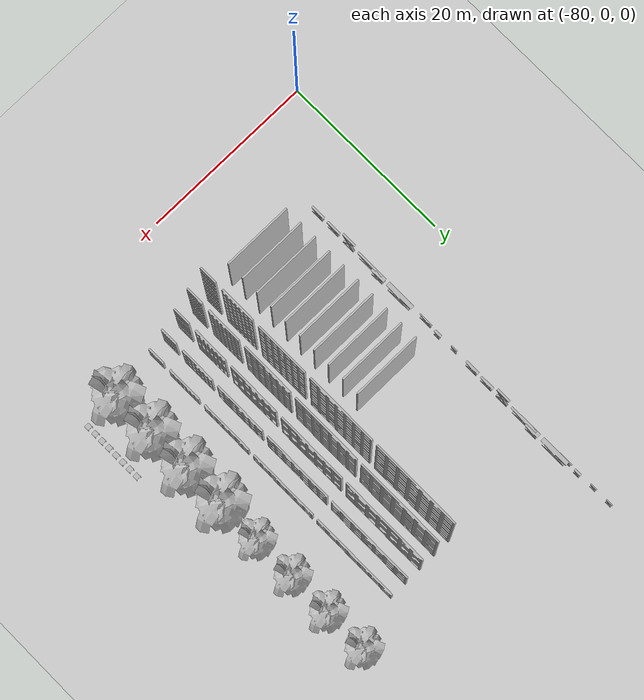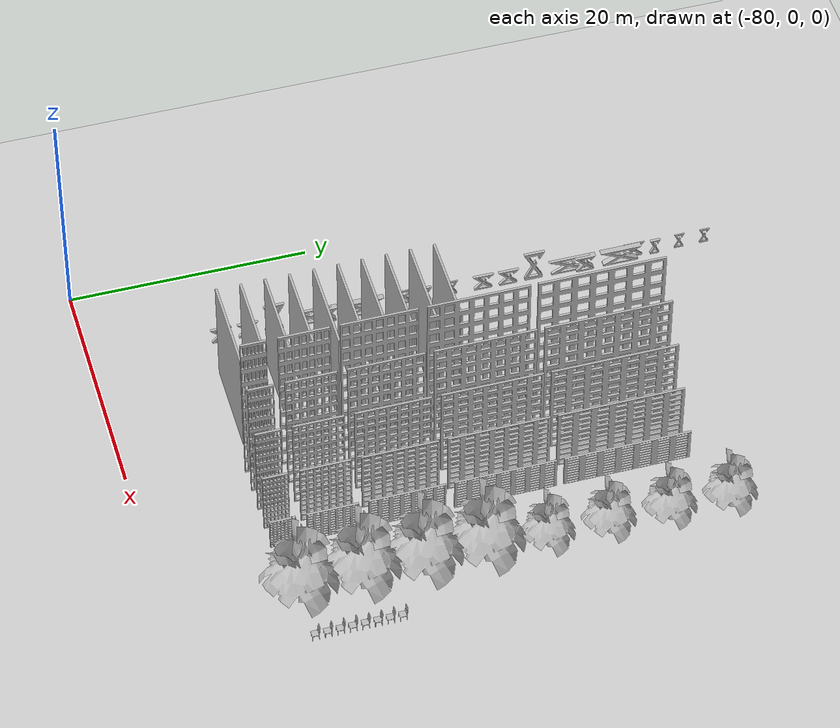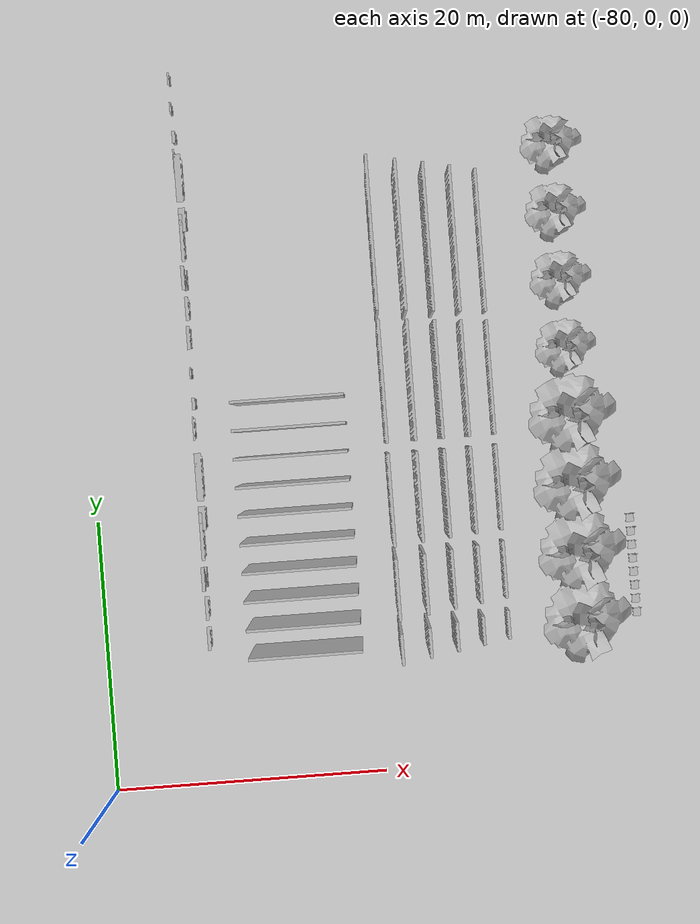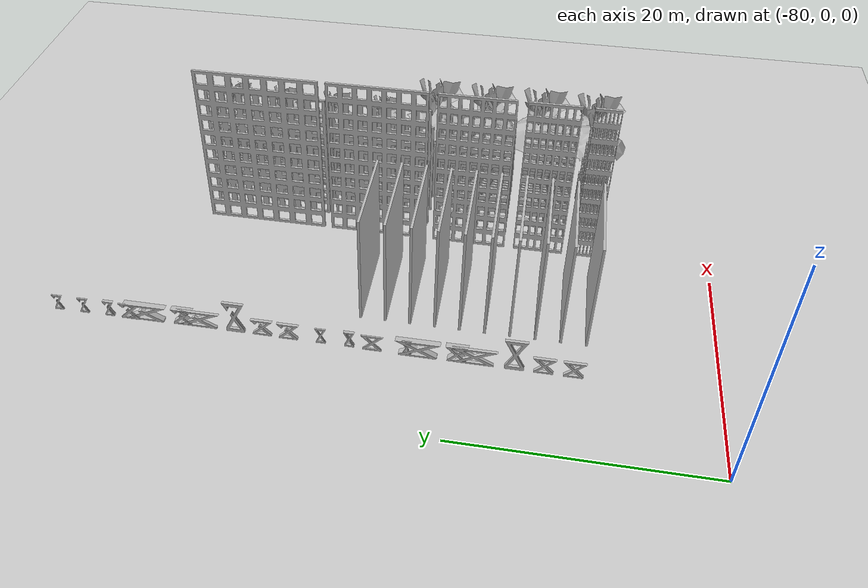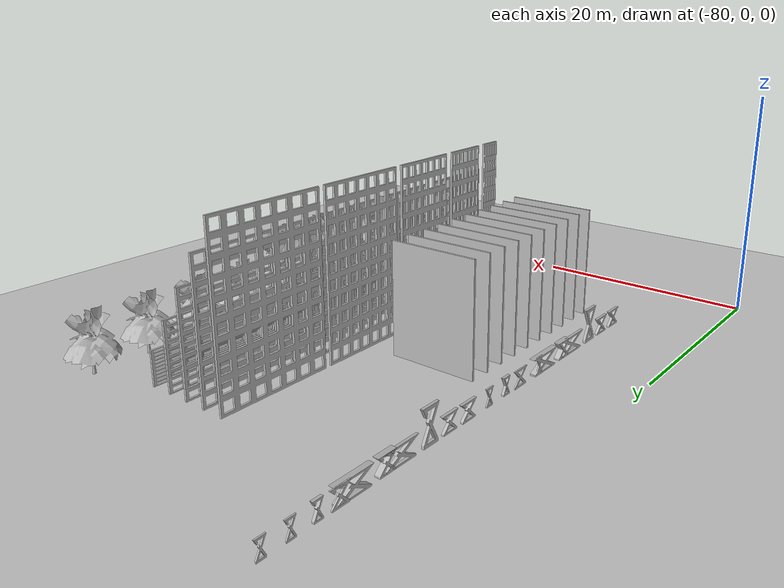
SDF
<sdf version="1.6">
 <world name="default">
  <model name="ground_plane">
   <static>1</static>
   <link name="link">
    <collision name="collision">
     <geometry><plane><normal>0 0 1</normal><size>1000 1000</size></plane></geometry>
     <surface>
      <contact><collide_bitmask>65535</collide_bitmask></contact>
      <friction><ode><mu>100</mu><mu2>50</mu2></ode></friction>
     </surface>
    </collision>
    <visual name="visual">
     <cast_shadows>0</cast_shadows>
     <geometry><plane><normal>0 0 1</normal><size>1000 1000</size></plane></geometry>
     <material>
      <script><uri>file://media/materials/scripts/gazebo.material</uri><name>Gazebo/Grey</name></script>
     </material>
    </visual>
   </link>
  </model>
  <model name="tree_0">
   <static>1</static>
   <link name="link">
    <inertial>
     <mass>100</mass>
     <inertia><ixx>100</ixx><ixy>0</ixy><ixz>0</ixz><iyy>100</iyy><iyz>0</iyz><izz>100</izz></inertia>
    </inertial>
    <collision name="collision">
     <geometry><mesh><uri>model://tree/meshes/tree.dae</uri></mesh></geometry>
    </collision>
    <visual name="visual"><geometry><mesh><uri>model://tree/meshes/tree.dae</uri></mesh></geometry></visual>
   </link>
   <pose>-44.6003 10.3851 0 0 -0 0</pose>
  </model>
  <model name="tree_1">
   <static>1</static>
   <link name="link">
    <inertial>
     <mass>100</mass>
     <inertia><ixx>100</ixx><ixy>0</ixy><ixz>0</ixz><iyy>100</iyy><iyz>0</iyz><izz>100</izz></inertia>
    </inertial>
    <collision name="collision">
     <geometry><mesh><uri>model://tree/meshes/tree.dae</uri></mesh></geometry>
    </collision>
    <visual name="visual"><geometry><mesh><uri>model://tree/meshes/tree.dae</uri></mesh></geometry></visual>
   </link>
   <pose>-44.6003 15.3851 0 0 -0 0</pose>
  </model>
  <model name="tree_2">
   <static>1</static>
   <link name="link">
    <inertial>
     <mass>100</mass>
     <inertia><ixx>100</ixx><ixy>0</ixy><ixz>0</ixz><iyy>100</iyy><iyz>0</iyz><izz>100</izz></inertia>
    </inertial>
    <collision name="collision">
     <geometry><mesh><uri>model://tree/meshes/tree.dae</uri></mesh></geometry>
    </collision>
    <visual name="visual"><geometry><mesh><uri>model://tree/meshes/tree.dae</uri></mesh></geometry></visual>
   </link>
   <pose>-44.6003 20.3851 0 0 -0 0</pose>
  </model>
  <model name="tree_3">
   <static>1</static>
   <link name="link">
    <inertial>
     <mass>100</mass>
     <inertia><ixx>100</ixx><ixy>0</ixy><ixz>0</ixz><iyy>100</iyy><iyz>0</iyz><izz>100</izz></inertia>
    </inertial>
    <collision name="collision">
     <geometry><mesh><uri>model://tree/meshes/tree.dae</uri></mesh></geometry>
    </collision>
    <visual name="visual"><geometry><mesh><uri>model://tree/meshes/tree.dae</uri></mesh></geometry></visual>
   </link>
   <pose>-44.6003 25.3851 0 0 -0 0</pose>
  </model>
  <model name="tree_4">
   <static>1</static>
   <link name="link">
    <inertial>
     <mass>100</mass>
     <inertia><ixx>100</ixx><ixy>0</ixy><ixz>0</ixz><iyy>100</iyy><iyz>0</iyz><izz>100</izz></inertia>
    </inertial>
    <collision name="collision">
     <geometry><mesh><uri>model://tree/meshes/tree.dae</uri><scale>0.7 0.7 0.7</scale></mesh></geometry>
    </collision>
    <visual name="visual">
     <geometry><mesh><uri>model://tree/meshes/tree.dae</uri><scale>0.7 0.7 0.7</scale></mesh></geometry>
    </visual>
   </link>
   <pose>-44.6003 30.3851 0 0 -0 0</pose>
  </model>
  <model name="tree_5">
   <static>1</static>
   <link name="link">
    <inertial>
     <mass>100</mass>
     <inertia><ixx>100</ixx><ixy>0</ixy><ixz>0</ixz><iyy>100</iyy><iyz>0</iyz><izz>100</izz></inertia>
    </inertial>
    <collision name="collision">
     <geometry><mesh><uri>model://tree/meshes/tree.dae</uri><scale>0.7 0.7 0.7</scale></mesh></geometry>
    </collision>
    <visual name="visual">
     <geometry><mesh><uri>model://tree/meshes/tree.dae</uri><scale>0.7 0.7 0.7</scale></mesh></geometry>
    </visual>
   </link>
   <pose>-44.6003 35.3851 0 0 -0 0</pose>
  </model>
  <model name="tree_6">
   <static>1</static>
   <link name="link">
    <inertial>
     <mass>100</mass>
     <inertia><ixx>100</ixx><ixy>0</ixy><ixz>0</ixz><iyy>100</iyy><iyz>0</iyz><izz>100</izz></inertia>
    </inertial>
    <collision name="collision">
     <geometry><mesh><uri>model://tree/meshes/tree.dae</uri><scale>0.7 0.7 0.7</scale></mesh></geometry>
    </collision>
    <visual name="visual">
     <geometry><mesh><uri>model://tree/meshes/tree.dae</uri><scale>0.7 0.7 0.7</scale></mesh></geometry>
    </visual>
   </link>
   <pose>-44.6003 40.3851 0 0 -0 0</pose>
  </model>
  <model name="tree_7">
   <static>1</static>
   <link name="link">
    <inertial>
     <mass>100</mass>
     <inertia><ixx>100</ixx><ixy>0</ixy><ixz>0</ixz><iyy>100</iyy><iyz>0</iyz><izz>100</izz></inertia>
    </inertial>
    <collision name="collision">
     <geometry><mesh><uri>model://tree/meshes/tree.dae</uri><scale>0.7 0.7 0.7</scale></mesh></geometry>
    </collision>
    <visual name="visual">
     <geometry><mesh><uri>model://tree/meshes/tree.dae</uri><scale>0.7 0.7 0.7</scale></mesh></geometry>
    </visual>
   </link>
   <pose>-44.6003 45.3851 0 0 -0 0</pose>
  </model>
  <model name="chair_0">
   <static>1</static>
   <link name="link">
    <inertial>
     <mass>100</mass>
     <inertia><ixx>100</ixx><ixy>0</ixy><ixz>0</ixz><iyy>100</iyy><iyz>0</iyz><izz>100</izz></inertia>
    </inertial>
    <collision name="collision">
     <geometry><mesh><uri>model://chair/meshes/chair.dae</uri><scale>1.5 1.5 1.5</scale></mesh></geometry>
    </collision>
    <visual name="visual">
     <geometry><mesh><uri>model://chair/meshes/chair.dae</uri><scale>1.5 1.5 1.5</scale></mesh></geometry>
    </visual>
   </link>
   <pose>-40.6067 10.4313 0 0 -0 0</pose>
  </model>
  <model name="chair_1">
   <static>1</static>
   <link name="link">
    <inertial>
     <mass>100</mass>
     <inertia><ixx>100</ixx><ixy>0</ixy><ixz>0</ixz><iyy>100</iyy><iyz>0</iyz><izz>100</izz></inertia>
    </inertial>
    <collision name="collision">
     <geometry><mesh><uri>model://chair/meshes/chair.dae</uri><scale>1.5 1.5 1.5</scale></mesh></geometry>
    </collision>
    <visual name="visual">
     <geometry><mesh><uri>model://chair/meshes/chair.dae</uri><scale>1.5 1.5 1.5</scale></mesh></geometry>
    </visual>
   </link>
   <pose>-40.6067 11.4313 0 0 -0 0</pose>
  </model>
  <model name="chair_2">
   <static>1</static>
   <link name="link">
    <inertial>
     <mass>100</mass>
     <inertia><ixx>100</ixx><ixy>0</ixy><ixz>0</ixz><iyy>100</iyy><iyz>0</iyz><izz>100</izz></inertia>
    </inertial>
    <collision name="collision">
     <geometry><mesh><uri>model://chair/meshes/chair.dae</uri><scale>1.5 1.5 1.5</scale></mesh></geometry>
    </collision>
    <visual name="visual">
     <geometry><mesh><uri>model://chair/meshes/chair.dae</uri><scale>1.5 1.5 1.5</scale></mesh></geometry>
    </visual>
   </link>
   <pose>-40.6067 12.4313 0 0 -0 0</pose>
  </model>
  <model name="chair_3">
   <static>1</static>
   <link name="link">
    <inertial>
     <mass>100</mass>
     <inertia><ixx>100</ixx><ixy>0</ixy><ixz>0</ixz><iyy>100</iyy><iyz>0</iyz><izz>100</izz></inertia>
    </inertial>
    <collision name="collision">
     <geometry><mesh><uri>model://chair/meshes/chair.dae</uri><scale>1.5 1.5 1.5</scale></mesh></geometry>
    </collision>
    <visual name="visual">
     <geometry><mesh><uri>model://chair/meshes/chair.dae</uri><scale>1.5 1.5 1.5</scale></mesh></geometry>
    </visual>
   </link>
   <pose>-40.6067 13.4313 0 0 -0 0</pose>
  </model>
  <model name="chair_4">
   <static>1</static>
   <link name="link">
    <inertial>
     <mass>100</mass>
     <inertia><ixx>100</ixx><ixy>0</ixy><ixz>0</ixz><iyy>100</iyy><iyz>0</iyz><izz>100</izz></inertia>
    </inertial>
    <collision name="collision">
     <geometry><mesh><uri>model://chair/meshes/chair.dae</uri><scale>1.5 1.5 1.5</scale></mesh></geometry>
    </collision>
    <visual name="visual">
     <geometry><mesh><uri>model://chair/meshes/chair.dae</uri><scale>1.5 1.5 1.5</scale></mesh></geometry>
    </visual>
   </link>
   <pose>-40.6067 14.4313 0 0 -0 0</pose>
  </model>
  <model name="chair_5">
   <static>1</static>
   <link name="link">
    <inertial>
     <mass>100</mass>
     <inertia><ixx>100</ixx><ixy>0</ixy><ixz>0</ixz><iyy>100</iyy><iyz>0</iyz><izz>100</izz></inertia>
    </inertial>
    <collision name="collision">
     <geometry><mesh><uri>model://chair/meshes/chair.dae</uri><scale>1.5 1.5 1.5</scale></mesh></geometry>
    </collision>
    <visual name="visual">
     <geometry><mesh><uri>model://chair/meshes/chair.dae</uri><scale>1.5 1.5 1.5</scale></mesh></geometry>
    </visual>
   </link>
   <pose>-40.6067 15.4313 0 0 -0 0</pose>
  </model>
  <model name="chair_6">
   <static>1</static>
   <link name="link">
    <inertial>
     <mass>100</mass>
     <inertia><ixx>100</ixx><ixy>0</ixy><ixz>0</ixz><iyy>100</iyy><iyz>0</iyz><izz>100</izz></inertia>
    </inertial>
    <collision name="collision">
     <geometry><mesh><uri>model://chair/meshes/chair.dae</uri><scale>1.5 1.5 1.5</scale></mesh></geometry>
    </collision>
    <visual name="visual">
     <geometry><mesh><uri>model://chair/meshes/chair.dae</uri><scale>1.5 1.5 1.5</scale></mesh></geometry>
    </visual>
   </link>
   <pose>-40.6067 16.4313 0 0 -0 0</pose>
  </model>
  <model name="chair_7">
   <static>1</static>
   <link name="link">
    <inertial>
     <mass>100</mass>
     <inertia><ixx>100</ixx><ixy>0</ixy><ixz>0</ixz><iyy>100</iyy><iyz>0</iyz><izz>100</izz></inertia>
    </inertial>
    <collision name="collision">
     <geometry><mesh><uri>model://chair/meshes/chair.dae</uri><scale>1.5 1.5 1.5</scale></mesh></geometry>
    </collision>
    <visual name="visual">
     <geometry><mesh><uri>model://chair/meshes/chair.dae</uri><scale>1.5 1.5 1.5</scale></mesh></geometry>
    </visual>
   </link>
   <pose>-40.6067 17.4313 0 0 -0 0</pose>
  </model>
  <model name="fence_0">
   <static>1</static>
   <link name="link">
    <inertial>
     <mass>100</mass>
     <inertia><ixx>100</ixx><ixy>0</ixy><ixz>0</ixz><iyy>100</iyy><iyz>0</iyz><izz>100</izz></inertia>
    </inertial>
    <collision name="collision">
     <geometry><mesh><uri>model://fence/meshes/fence_10x7.dae</uri><scale>1 1 1</scale></mesh></geometry>
    </collision>
    <visual name="visual">
     <geometry><mesh><uri>model://fence/meshes/fence_10x7.dae</uri><scale>1 1 1</scale></mesh></geometry>
    </visual>
   </link>
   <pose>-50.3571 9.35688 0 0 -0 0</pose>
  </model>
  <model name="fence_1">
   <static>1</static>
   <link name="link">
    <inertial>
     <mass>100</mass>
     <inertia><ixx>100</ixx><ixy>0</ixy><ixz>0</ixz><iyy>100</iyy><iyz>0</iyz><izz>100</izz></inertia>
    </inertial>
    <collision name="collision">
     <geometry><mesh><uri>model://fence/meshes/fence_10x7.dae</uri><scale>1 2 1</scale></mesh></geometry>
    </collision>
    <visual name="visual">
     <geometry><mesh><uri>model://fence/meshes/fence_10x7.dae</uri><scale>1 2 1</scale></mesh></geometry>
    </visual>
   </link>
   <pose>-50.3571 12.3569 0 0 -0 0</pose>
  </model>
  <model name="fence_2">
   <static>1</static>
   <link name="link">
    <inertial>
     <mass>100</mass>
     <inertia><ixx>100</ixx><ixy>0</ixy><ixz>0</ixz><iyy>100</iyy><iyz>0</iyz><izz>100</izz></inertia>
    </inertial>
    <collision name="collision">
     <geometry><mesh><uri>model://fence/meshes/fence_10x7.dae</uri><scale>1 3 1</scale></mesh></geometry>
    </collision>
    <visual name="visual">
     <geometry><mesh><uri>model://fence/meshes/fence_10x7.dae</uri><scale>1 3 1</scale></mesh></geometry>
    </visual>
   </link>
   <pose>-50.3571 17.3569 0 0 -0 0</pose>
  </model>
  <model name="fence_3">
   <static>1</static>
   <link name="link">
    <inertial>
     <mass>100</mass>
     <inertia><ixx>100</ixx><ixy>0</ixy><ixz>0</ixz><iyy>100</iyy><iyz>0</iyz><izz>100</izz></inertia>
    </inertial>
    <collision name="collision">
     <geometry><mesh><uri>model://fence/meshes/fence_10x7.dae</uri><scale>1 4 1</scale></mesh></geometry>
    </collision>
    <visual name="visual">
     <geometry><mesh><uri>model://fence/meshes/fence_10x7.dae</uri><scale>1 4 1</scale></mesh></geometry>
    </visual>
   </link>
   <pose>-50.3571 24.3569 0 0 -0 0</pose>
  </model>
  <model name="fence_4">
   <static>1</static>
   <link name="link">
    <inertial>
     <mass>100</mass>
     <inertia><ixx>100</ixx><ixy>0</ixy><ixz>0</ixz><iyy>100</iyy><iyz>0</iyz><izz>100</izz></inertia>
    </inertial>
    <collision name="collision">
     <geometry><mesh><uri>model://fence/meshes/fence_10x7.dae</uri><scale>1 5 1</scale></mesh></geometry>
    </collision>
    <visual name="visual">
     <geometry><mesh><uri>model://fence/meshes/fence_10x7.dae</uri><scale>1 5 1</scale></mesh></geometry>
    </visual>
   </link>
   <pose>-50.3571 33.3569 0 0 -0 0</pose>
  </model>
  <model name="fence_5">
   <static>1</static>
   <link name="link">
    <inertial>
     <mass>100</mass>
     <inertia><ixx>100</ixx><ixy>0</ixy><ixz>0</ixz><iyy>100</iyy><iyz>0</iyz><izz>100</izz></inertia>
    </inertial>
    <collision name="collision">
     <geometry><mesh><uri>model://fence/meshes/fence_10x7.dae</uri><scale>1 1 2</scale></mesh></geometry>
    </collision>
    <visual name="visual">
     <geometry><mesh><uri>model://fence/meshes/fence_10x7.dae</uri><scale>1 1 2</scale></mesh></geometry>
    </visual>
   </link>
   <pose>-52.3571 9.35688 0 0 -0 0</pose>
  </model>
  <model name="fence_6">
   <static>1</static>
   <link name="link">
    <inertial>
     <mass>100</mass>
     <inertia><ixx>100</ixx><ixy>0</ixy><ixz>0</ixz><iyy>100</iyy><iyz>0</iyz><izz>100</izz></inertia>
    </inertial>
    <collision name="collision">
     <geometry><mesh><uri>model://fence/meshes/fence_10x7.dae</uri><scale>1 2 2</scale></mesh></geometry>
    </collision>
    <visual name="visual">
     <geometry><mesh><uri>model://fence/meshes/fence_10x7.dae</uri><scale>1 2 2</scale></mesh></geometry>
    </visual>
   </link>
   <pose>-52.3571 12.3569 0 0 -0 0</pose>
  </model>
  <model name="fence_7">
   <static>1</static>
   <link name="link">
    <inertial>
     <mass>100</mass>
     <inertia><ixx>100</ixx><ixy>0</ixy><ixz>0</ixz><iyy>100</iyy><iyz>0</iyz><izz>100</izz></inertia>
    </inertial>
    <collision name="collision">
     <geometry><mesh><uri>model://fence/meshes/fence_10x7.dae</uri><scale>1 3 2</scale></mesh></geometry>
    </collision>
    <visual name="visual">
     <geometry><mesh><uri>model://fence/meshes/fence_10x7.dae</uri><scale>1 3 2</scale></mesh></geometry>
    </visual>
   </link>
   <pose>-52.3571 17.3569 0 0 -0 0</pose>
  </model>
  <model name="fence_8">
   <static>1</static>
   <link name="link">
    <inertial>
     <mass>100</mass>
     <inertia><ixx>100</ixx><ixy>0</ixy><ixz>0</ixz><iyy>100</iyy><iyz>0</iyz><izz>100</izz></inertia>
    </inertial>
    <collision name="collision">
     <geometry><mesh><uri>model://fence/meshes/fence_10x7.dae</uri><scale>1 4 2</scale></mesh></geometry>
    </collision>
    <visual name="visual">
     <geometry><mesh><uri>model://fence/meshes/fence_10x7.dae</uri><scale>1 4 2</scale></mesh></geometry>
    </visual>
   </link>
   <pose>-52.3571 24.3569 0 0 -0 0</pose>
  </model>
  <model name="fence_9">
   <static>1</static>
   <link name="link">
    <inertial>
     <mass>100</mass>
     <inertia><ixx>100</ixx><ixy>0</ixy><ixz>0</ixz><iyy>100</iyy><iyz>0</iyz><izz>100</izz></inertia>
    </inertial>
    <collision name="collision">
     <geometry><mesh><uri>model://fence/meshes/fence_10x7.dae</uri><scale>1 5 2</scale></mesh></geometry>
    </collision>
    <visual name="visual">
     <geometry><mesh><uri>model://fence/meshes/fence_10x7.dae</uri><scale>1 5 2</scale></mesh></geometry>
    </visual>
   </link>
   <pose>-52.3571 33.3569 0 0 -0 0</pose>
  </model>
  <model name="fence_10">
   <static>1</static>
   <link name="link">
    <inertial>
     <mass>100</mass>
     <inertia><ixx>100</ixx><ixy>0</ixy><ixz>0</ixz><iyy>100</iyy><iyz>0</iyz><izz>100</izz></inertia>
    </inertial>
    <collision name="collision">
     <geometry><mesh><uri>model://fence/meshes/fence_10x7.dae</uri><scale>1 1 3</scale></mesh></geometry>
    </collision>
    <visual name="visual">
     <geometry><mesh><uri>model://fence/meshes/fence_10x7.dae</uri><scale>1 1 3</scale></mesh></geometry>
    </visual>
   </link>
   <pose>-54.3571 9.35688 0 0 -0 0</pose>
  </model>
  <model name="fence_11">
   <static>1</static>
   <link name="link">
    <inertial>
     <mass>100</mass>
     <inertia><ixx>100</ixx><ixy>0</ixy><ixz>0</ixz><iyy>100</iyy><iyz>0</iyz><izz>100</izz></inertia>
    </inertial>
    <collision name="collision">
     <geometry><mesh><uri>model://fence/meshes/fence_10x7.dae</uri><scale>1 2 3</scale></mesh></geometry>
    </collision>
    <visual name="visual">
     <geometry><mesh><uri>model://fence/meshes/fence_10x7.dae</uri><scale>1 2 3</scale></mesh></geometry>
    </visual>
   </link>
   <pose>-54.3571 12.3569 0 0 -0 0</pose>
  </model>
  <model name="fence_12">
   <static>1</static>
   <link name="link">
    <inertial>
     <mass>100</mass>
     <inertia><ixx>100</ixx><ixy>0</ixy><ixz>0</ixz><iyy>100</iyy><iyz>0</iyz><izz>100</izz></inertia>
    </inertial>
    <collision name="collision">
     <geometry><mesh><uri>model://fence/meshes/fence_10x7.dae</uri><scale>1 3 3</scale></mesh></geometry>
    </collision>
    <visual name="visual">
     <geometry><mesh><uri>model://fence/meshes/fence_10x7.dae</uri><scale>1 3 3</scale></mesh></geometry>
    </visual>
   </link>
   <pose>-54.3571 17.3569 0 0 -0 0</pose>
  </model>
  <model name="fence_13">
   <static>1</static>
   <link name="link">
    <inertial>
     <mass>100</mass>
     <inertia><ixx>100</ixx><ixy>0</ixy><ixz>0</ixz><iyy>100</iyy><iyz>0</iyz><izz>100</izz></inertia>
    </inertial>
    <collision name="collision">
     <geometry><mesh><uri>model://fence/meshes/fence_10x7.dae</uri><scale>1 4 3</scale></mesh></geometry>
    </collision>
    <visual name="visual">
     <geometry><mesh><uri>model://fence/meshes/fence_10x7.dae</uri><scale>1 4 3</scale></mesh></geometry>
    </visual>
   </link>
   <pose>-54.3571 24.3569 0 0 -0 0</pose>
  </model>
  <model name="fence_14">
   <static>1</static>
   <link name="link">
    <inertial>
     <mass>100</mass>
     <inertia><ixx>100</ixx><ixy>0</ixy><ixz>0</ixz><iyy>100</iyy><iyz>0</iyz><izz>100</izz></inertia>
    </inertial>
    <collision name="collision">
     <geometry><mesh><uri>model://fence/meshes/fence_10x7.dae</uri><scale>1 5 3</scale></mesh></geometry>
    </collision>
    <visual name="visual">
     <geometry><mesh><uri>model://fence/meshes/fence_10x7.dae</uri><scale>1 5 3</scale></mesh></geometry>
    </visual>
   </link>
   <pose>-54.3571 33.3569 0 0 -0 0</pose>
  </model>
  <model name="fence_15">
   <static>1</static>
   <link name="link">
    <inertial>
     <mass>100</mass>
     <inertia><ixx>100</ixx><ixy>0</ixy><ixz>0</ixz><iyy>100</iyy><iyz>0</iyz><izz>100</izz></inertia>
    </inertial>
    <collision name="collision">
     <geometry><mesh><uri>model://fence/meshes/fence_10x7.dae</uri><scale>1 1 4</scale></mesh></geometry>
    </collision>
    <visual name="visual">
     <geometry><mesh><uri>model://fence/meshes/fence_10x7.dae</uri><scale>1 1 4</scale></mesh></geometry>
    </visual>
   </link>
   <pose>-56.3571 9.35688 0 0 -0 0</pose>
  </model>
  <model name="fence_16">
   <static>1</static>
   <link name="link">
    <inertial>
     <mass>100</mass>
     <inertia><ixx>100</ixx><ixy>0</ixy><ixz>0</ixz><iyy>100</iyy><iyz>0</iyz><izz>100</izz></inertia>
    </inertial>
    <collision name="collision">
     <geometry><mesh><uri>model://fence/meshes/fence_10x7.dae</uri><scale>1 2 4</scale></mesh></geometry>
    </collision>
    <visual name="visual">
     <geometry><mesh><uri>model://fence/meshes/fence_10x7.dae</uri><scale>1 2 4</scale></mesh></geometry>
    </visual>
   </link>
   <pose>-56.3571 12.3569 0 0 -0 0</pose>
  </model>
  <model name="fence_17">
   <static>1</static>
   <link name="link">
    <inertial>
     <mass>100</mass>
     <inertia><ixx>100</ixx><ixy>0</ixy><ixz>0</ixz><iyy>100</iyy><iyz>0</iyz><izz>100</izz></inertia>
    </inertial>
    <collision name="collision">
     <geometry><mesh><uri>model://fence/meshes/fence_10x7.dae</uri><scale>1 3 4</scale></mesh></geometry>
    </collision>
    <visual name="visual">
     <geometry><mesh><uri>model://fence/meshes/fence_10x7.dae</uri><scale>1 3 4</scale></mesh></geometry>
    </visual>
   </link>
   <pose>-56.3571 17.3569 0 0 -0 0</pose>
  </model>
  <model name="fence_18">
   <static>1</static>
   <link name="link">
    <inertial>
     <mass>100</mass>
     <inertia><ixx>100</ixx><ixy>0</ixy><ixz>0</ixz><iyy>100</iyy><iyz>0</iyz><izz>100</izz></inertia>
    </inertial>
    <collision name="collision">
     <geometry><mesh><uri>model://fence/meshes/fence_10x7.dae</uri><scale>1 4 4</scale></mesh></geometry>
    </collision>
    <visual name="visual">
     <geometry><mesh><uri>model://fence/meshes/fence_10x7.dae</uri><scale>1 4 4</scale></mesh></geometry>
    </visual>
   </link>
   <pose>-56.3571 24.3569 0 0 -0 0</pose>
  </model>
  <model name="fence_19">
   <static>1</static>
   <link name="link">
    <inertial>
     <mass>100</mass>
     <inertia><ixx>100</ixx><ixy>0</ixy><ixz>0</ixz><iyy>100</iyy><iyz>0</iyz><izz>100</izz></inertia>
    </inertial>
    <collision name="collision">
     <geometry><mesh><uri>model://fence/meshes/fence_10x7.dae</uri><scale>1 5 4</scale></mesh></geometry>
    </collision>
    <visual name="visual">
     <geometry><mesh><uri>model://fence/meshes/fence_10x7.dae</uri><scale>1 5 4</scale></mesh></geometry>
    </visual>
   </link>
   <pose>-56.3571 33.3569 0 0 -0 0</pose>
  </model>
  <model name="fence_20">
   <static>1</static>
   <link name="link">
    <inertial>
     <mass>100</mass>
     <inertia><ixx>100</ixx><ixy>0</ixy><ixz>0</ixz><iyy>100</iyy><iyz>0</iyz><izz>100</izz></inertia>
    </inertial>
    <collision name="collision">
     <geometry><mesh><uri>model://fence/meshes/fence_10x7.dae</uri><scale>1 1 5</scale></mesh></geometry>
    </collision>
    <visual name="visual">
     <geometry><mesh><uri>model://fence/meshes/fence_10x7.dae</uri><scale>1 1 5</scale></mesh></geometry>
    </visual>
   </link>
   <pose>-58.3571 9.35688 0 0 -0 0</pose>
  </model>
  <model name="fence_21">
   <static>1</static>
   <link name="link">
    <inertial>
     <mass>100</mass>
     <inertia><ixx>100</ixx><ixy>0</ixy><ixz>0</ixz><iyy>100</iyy><iyz>0</iyz><izz>100</izz></inertia>
    </inertial>
    <collision name="collision">
     <geometry><mesh><uri>model://fence/meshes/fence_10x7.dae</uri><scale>1 2 5</scale></mesh></geometry>
    </collision>
    <visual name="visual">
     <geometry><mesh><uri>model://fence/meshes/fence_10x7.dae</uri><scale>1 2 5</scale></mesh></geometry>
    </visual>
   </link>
   <pose>-58.3571 12.3569 0 0 -0 0</pose>
  </model>
  <model name="fence_22">
   <static>1</static>
   <link name="link">
    <inertial>
     <mass>100</mass>
     <inertia><ixx>100</ixx><ixy>0</ixy><ixz>0</ixz><iyy>100</iyy><iyz>0</iyz><izz>100</izz></inertia>
    </inertial>
    <collision name="collision">
     <geometry><mesh><uri>model://fence/meshes/fence_10x7.dae</uri><scale>1 3 5</scale></mesh></geometry>
    </collision>
    <visual name="visual">
     <geometry><mesh><uri>model://fence/meshes/fence_10x7.dae</uri><scale>1 3 5</scale></mesh></geometry>
    </visual>
   </link>
   <pose>-58.3571 17.3569 0 0 -0 0</pose>
  </model>
  <model name="fence_23">
   <static>1</static>
   <link name="link">
    <inertial>
     <mass>100</mass>
     <inertia><ixx>100</ixx><ixy>0</ixy><ixz>0</ixz><iyy>100</iyy><iyz>0</iyz><izz>100</izz></inertia>
    </inertial>
    <collision name="collision">
     <geometry><mesh><uri>model://fence/meshes/fence_10x7.dae</uri><scale>1 4 5</scale></mesh></geometry>
    </collision>
    <visual name="visual">
     <geometry><mesh><uri>model://fence/meshes/fence_10x7.dae</uri><scale>1 4 5</scale></mesh></geometry>
    </visual>
   </link>
   <pose>-58.3571 24.3569 0 0 -0 0</pose>
  </model>
  <model name="fence_24">
   <static>1</static>
   <link name="link">
    <inertial>
     <mass>100</mass>
     <inertia><ixx>100</ixx><ixy>0</ixy><ixz>0</ixz><iyy>100</iyy><iyz>0</iyz><izz>100</izz></inertia>
    </inertial>
    <collision name="collision">
     <geometry><mesh><uri>model://fence/meshes/fence_10x7.dae</uri><scale>1 5 5</scale></mesh></geometry>
    </collision>
    <visual name="visual">
     <geometry><mesh><uri>model://fence/meshes/fence_10x7.dae</uri><scale>1 5 5</scale></mesh></geometry>
    </visual>
   </link>
   <pose>-58.3571 33.3569 0 0 -0 0</pose>
  </model>
  <model name="grey_wall_obstacle_0">
   <static>1</static>
   <link name="link">
    <pose>0 0 5 0 -0 0</pose>
    <collision name="collision"><geometry><box><size>8 0.2 10</size></box></geometry></collision>
    <visual name="visual">
     <cast_shadows>0</cast_shadows>
     <geometry><box><size>8 0.2 10</size></box></geometry>
    </visual>
   </link>
   <pose>-65 10 0 0 -0 0</pose>
  </model>
  <model name="grey_wall_obstacle_1">
   <static>1</static>
   <link name="link">
    <pose>0 0 5 0 -0 0</pose>
    <collision name="collision"><geometry><box><size>8 0.2 10</size></box></geometry></collision>
    <visual name="visual">
     <cast_shadows>0</cast_shadows>
     <geometry><box><size>8 0.2 10</size></box></geometry>
    </visual>
   </link>
   <pose>-65 12 0 0 -0 0</pose>
  </model>
  <model name="grey_wall_obstacle_2">
   <static>1</static>
   <link name="link">
    <pose>0 0 5 0 -0 0</pose>
    <collision name="collision"><geometry><box><size>8 0.2 10</size></box></geometry></collision>
    <visual name="visual">
     <cast_shadows>0</cast_shadows>
     <geometry><box><size>8 0.2 10</size></box></geometry>
    </visual>
   </link>
   <pose>-65 14 0 0 -0 0</pose>
  </model>
  <model name="grey_wall_obstacle_3">
   <static>1</static>
   <link name="link">
    <pose>0 0 5 0 -0 0</pose>
    <collision name="collision"><geometry><box><size>8 0.2 10</size></box></geometry></collision>
    <visual name="visual">
     <cast_shadows>0</cast_shadows>
     <geometry><box><size>8 0.2 10</size></box></geometry>
    </visual>
   </link>
   <pose>-65 16 0 0 -0 0</pose>
  </model>
  <model name="grey_wall_obstacle_4">
   <static>1</static>
   <link name="link">
    <pose>0 0 5 0 -0 0</pose>
    <collision name="collision"><geometry><box><size>8 0.2 10</size></box></geometry></collision>
    <visual name="visual">
     <cast_shadows>0</cast_shadows>
     <geometry><box><size>8 0.2 10</size></box></geometry>
    </visual>
   </link>
   <pose>-65 18 0 0 -0 0</pose>
  </model>
  <model name="grey_wall_obstacle_5">
   <static>1</static>
   <link name="link">
    <pose>0 0 5 0 -0 0</pose>
    <collision name="collision"><geometry><box><size>8 0.2 10</size></box></geometry></collision>
    <visual name="visual">
     <cast_shadows>0</cast_shadows>
     <geometry><box><size>8 0.2 10</size></box></geometry>
    </visual>
   </link>
   <pose>-65 20 0 0 -0 0</pose>
  </model>
  <model name="grey_wall_obstacle_6">
   <static>1</static>
   <link name="link">
    <pose>0 0 5 0 -0 0</pose>
    <collision name="collision"><geometry><box><size>8 0.2 10</size></box></geometry></collision>
    <visual name="visual">
     <cast_shadows>0</cast_shadows>
     <geometry><box><size>8 0.2 10</size></box></geometry>
    </visual>
   </link>
   <pose>-65 22 0 0 -0 0</pose>
  </model>
  <model name="grey_wall_obstacle_7">
   <static>1</static>
   <link name="link">
    <pose>0 0 5 0 -0 0</pose>
    <collision name="collision"><geometry><box><size>8 0.2 10</size></box></geometry></collision>
    <visual name="visual">
     <cast_shadows>0</cast_shadows>
     <geometry><box><size>8 0.2 10</size></box></geometry>
    </visual>
   </link>
   <pose>-65 24 0 0 -0 0</pose>
  </model>
  <model name="grey_wall_obstacle_8">
   <static>1</static>
   <link name="link">
    <pose>0 0 5 0 -0 0</pose>
    <collision name="collision"><geometry><box><size>8 0.2 10</size></box></geometry></collision>
    <visual name="visual">
     <cast_shadows>0</cast_shadows>
     <geometry><box><size>8 0.2 10</size></box></geometry>
    </visual>
   </link>
   <pose>-65 26 0 0 -0 0</pose>
  </model>
  <model name="grey_wall_obstacle_9">
   <static>1</static>
   <link name="link">
    <pose>0 0 5 0 -0 0</pose>
    <collision name="collision"><geometry><box><size>8 0.2 10</size></box></geometry></collision>
    <visual name="visual">
     <cast_shadows>0</cast_shadows>
     <geometry><box><size>8 0.2 10</size></box></geometry>
    </visual>
   </link>
   <pose>-65 28 0 0 -0 0</pose>
  </model>
  <model name="diagonal_no_side_9">
   <static>1</static>
   <link name="link">
    <inertial>
     <mass>100</mass>
     <inertia><ixx>100</ixx><ixy>0</ixy><ixz>0</ixz><iyy>100</iyy><iyz>0</iyz><izz>100</izz></inertia>
    </inertial>
    <collision name="collision">
     <geometry>
      <mesh><uri>model://diagonal_no_side/meshes/diagonal_no_side.dae</uri><scale>1 1 1</scale></mesh>
     </geometry>
    </collision>
    <visual name="visual">
     <geometry>
      <mesh><uri>model://diagonal_no_side/meshes/diagonal_no_side.dae</uri><scale>1 1 1</scale></mesh>
     </geometry>
    </visual>
   </link>
   <pose>-72.4332 10.0311 0 0 -0 0</pose>
  </model>
  <model name="diagonal_no_side_0">
   <static>1</static>
   <link name="link">
    <inertial>
     <mass>100</mass>
     <inertia><ixx>100</ixx><ixy>0</ixy><ixz>0</ixz><iyy>100</iyy><iyz>0</iyz><izz>100</izz></inertia>
    </inertial>
    <collision name="collision">
     <geometry>
      <mesh><uri>model://diagonal_no_side/meshes/diagonal_no_side.dae</uri><scale>1 1 1</scale></mesh>
     </geometry>
    </collision>
    <visual name="visual">
     <geometry>
      <mesh><uri>model://diagonal_no_side/meshes/diagonal_no_side.dae</uri><scale>1 1 1</scale></mesh>
     </geometry>
    </visual>
   </link>
   <pose>-72.4157 12.2805 0 0 -0 0</pose>
  </model>
  <model name="diagonal_no_side_1">
   <static>1</static>
   <link name="link">
    <inertial>
     <mass>100</mass>
     <inertia><ixx>100</ixx><ixy>0</ixy><ixz>0</ixz><iyy>100</iyy><iyz>0</iyz><izz>100</izz></inertia>
    </inertial>
    <collision name="collision">
     <geometry>
      <mesh><uri>model://diagonal_no_side/meshes/diagonal_no_side.dae</uri><scale>1 1 2</scale></mesh>
     </geometry>
    </collision>
    <visual name="visual">
     <geometry>
      <mesh><uri>model://diagonal_no_side/meshes/diagonal_no_side.dae</uri><scale>1 1 2</scale></mesh>
     </geometry>
    </visual>
   </link>
   <pose>-72.4133 14.5059 0 0 -0 0</pose>
  </model>
  <model name="diagonal_no_side_2">
   <static>1</static>
   <link name="link">
    <inertial>
     <mass>100</mass>
     <inertia><ixx>100</ixx><ixy>0</ixy><ixz>0</ixz><iyy>100</iyy><iyz>0</iyz><izz>100</izz></inertia>
    </inertial>
    <collision name="collision">
     <geometry>
      <mesh><uri>model://diagonal_no_side/meshes/diagonal_no_side.dae</uri><scale>1 2 1</scale></mesh>
     </geometry>
    </collision>
    <visual name="visual">
     <geometry>
      <mesh><uri>model://diagonal_no_side/meshes/diagonal_no_side.dae</uri><scale>1 2 1</scale></mesh>
     </geometry>
    </visual>
   </link>
   <pose>-72.4049 16.6906 0 0 -0 0</pose>
  </model>
  <model name="diagonal_no_side_3">
   <static>1</static>
   <link name="link">
    <inertial>
     <mass>100</mass>
     <inertia><ixx>100</ixx><ixy>0</ixy><ixz>0</ixz><iyy>100</iyy><iyz>0</iyz><izz>100</izz></inertia>
    </inertial>
    <collision name="collision">
     <geometry>
      <mesh><uri>model://diagonal_no_side/meshes/diagonal_no_side.dae</uri><scale>2 1 1</scale></mesh>
     </geometry>
    </collision>
    <visual name="visual">
     <geometry>
      <mesh><uri>model://diagonal_no_side/meshes/diagonal_no_side.dae</uri><scale>2 1 1</scale></mesh>
     </geometry>
    </visual>
   </link>
   <pose>-72.3917 18.9247 0 0 -0 0</pose>
  </model>
  <model name="diagonal_no_side_4">
   <static>1</static>
   <link name="link">
    <inertial>
     <mass>100</mass>
     <inertia><ixx>100</ixx><ixy>0</ixy><ixz>0</ixz><iyy>100</iyy><iyz>0</iyz><izz>100</izz></inertia>
    </inertial>
    <collision name="collision">
     <geometry>
      <mesh><uri>model://diagonal_no_side/meshes/diagonal_no_side.dae</uri><scale>2 2 1</scale></mesh>
     </geometry>
    </collision>
    <visual name="visual">
     <geometry>
      <mesh><uri>model://diagonal_no_side/meshes/diagonal_no_side.dae</uri><scale>2 2 1</scale></mesh>
     </geometry>
    </visual>
   </link>
   <pose>-72.4206 21.0838 0 0 -0 0</pose>
  </model>
  <model name="diagonal_no_side_5">
   <static>1</static>
   <link name="link">
    <inertial>
     <mass>100</mass>
     <inertia><ixx>100</ixx><ixy>0</ixy><ixz>0</ixz><iyy>100</iyy><iyz>0</iyz><izz>100</izz></inertia>
    </inertial>
    <collision name="collision">
     <geometry>
      <mesh><uri>model://diagonal_no_side/meshes/diagonal_no_side.dae</uri><scale>0.5 0.5 1</scale></mesh>
     </geometry>
    </collision>
    <visual name="visual">
     <geometry>
      <mesh><uri>model://diagonal_no_side/meshes/diagonal_no_side.dae</uri><scale>0.5 0.5 1</scale></mesh>
     </geometry>
    </visual>
   </link>
   <pose>-72.3907 23.2466 0 0 -0 0</pose>
  </model>
  <model name="diagonal_no_side_6">
   <static>1</static>
   <link name="link">
    <inertial>
     <mass>100</mass>
     <inertia><ixx>100</ixx><ixy>0</ixy><ixz>0</ixz><iyy>100</iyy><iyz>0</iyz><izz>100</izz></inertia>
    </inertial>
    <collision name="collision">
     <geometry>
      <mesh><uri>model://diagonal_no_side/meshes/diagonal_no_side.dae</uri><scale>0.5 1 1</scale></mesh>
     </geometry>
    </collision>
    <visual name="visual">
     <geometry>
      <mesh><uri>model://diagonal_no_side/meshes/diagonal_no_side.dae</uri><scale>0.5 1 1</scale></mesh>
     </geometry>
    </visual>
   </link>
   <pose>-72.347 25.5508 0 0 -0 0</pose>
  </model>
  <model name="diagonal_no_side_7">
   <static>1</static>
   <link name="link">
    <inertial>
     <mass>100</mass>
     <inertia><ixx>100</ixx><ixy>0</ixy><ixz>0</ixz><iyy>100</iyy><iyz>0</iyz><izz>100</izz></inertia>
    </inertial>
    <collision name="collision">
     <geometry>
      <mesh><uri>model://diagonal_no_side/meshes/diagonal_no_side.dae</uri><scale>1 0.5 1</scale></mesh>
     </geometry>
    </collision>
    <visual name="visual">
     <geometry>
      <mesh><uri>model://diagonal_no_side/meshes/diagonal_no_side.dae</uri><scale>1 0.5 1</scale></mesh>
     </geometry>
    </visual>
   </link>
   <pose>-72.2728 27.8203 0 0 -0 0</pose>
  </model>
  <model name="diagonal_no_side_8">
   <static>1</static>
   <link name="link">
    <inertial>
     <mass>100</mass>
     <inertia><ixx>100</ixx><ixy>0</ixy><ixz>0</ixz><iyy>100</iyy><iyz>0</iyz><izz>100</izz></inertia>
    </inertial>
    <collision name="collision">
     <geometry>
      <mesh><uri>model://diagonal_no_side/meshes/diagonal_no_side.dae</uri><scale>0.5 0.5 1</scale></mesh>
     </geometry>
    </collision>
    <visual name="visual">
     <geometry>
      <mesh><uri>model://diagonal_no_side/meshes/diagonal_no_side.dae</uri><scale>0.5 0.5 1</scale></mesh>
     </geometry>
    </visual>
   </link>
   <pose>-72.2751 30.0866 0 0 -0 0</pose>
  </model>
  <model name="diagonal_no_side_cut_9">
   <static>1</static>
   <link name="link">
    <inertial>
     <mass>100</mass>
     <inertia><ixx>100</ixx><ixy>0</ixy><ixz>0</ixz><iyy>100</iyy><iyz>0</iyz><izz>100</izz></inertia>
    </inertial>
    <collision name="collision">
     <geometry>
      <mesh><uri>model://diagonal_no_side_cut/meshes/diagonal_no_side_cut.dae</uri><scale>1 1 1</scale></mesh>
     </geometry>
    </collision>
    <visual name="visual">
     <geometry>
      <mesh><uri>model://diagonal_no_side_cut/meshes/diagonal_no_side_cut.dae</uri><scale>1 1 1</scale></mesh>
     </geometry>
    </visual>
   </link>
   <pose>-72.2933 32.2609 0 0 -0 0</pose>
  </model>
  <model name="diagonal_no_side_cut_0">
   <static>1</static>
   <link name="link">
    <inertial>
     <mass>100</mass>
     <inertia><ixx>100</ixx><ixy>0</ixy><ixz>0</ixz><iyy>100</iyy><iyz>0</iyz><izz>100</izz></inertia>
    </inertial>
    <collision name="collision">
     <geometry>
      <mesh><uri>model://diagonal_no_side_cut/meshes/diagonal_no_side_cut.dae</uri><scale>1 1 1</scale></mesh>
     </geometry>
    </collision>
    <visual name="visual">
     <geometry>
      <mesh><uri>model://diagonal_no_side_cut/meshes/diagonal_no_side_cut.dae</uri><scale>1 1 1</scale></mesh>
     </geometry>
    </visual>
   </link>
   <pose>-72.2427 34.4062 0 0 -0 0</pose>
  </model>
  <model name="diagonal_no_side_cut_1">
   <static>1</static>
   <link name="link">
    <inertial>
     <mass>100</mass>
     <inertia><ixx>100</ixx><ixy>0</ixy><ixz>0</ixz><iyy>100</iyy><iyz>0</iyz><izz>100</izz></inertia>
    </inertial>
    <collision name="collision">
     <geometry>
      <mesh><uri>model://diagonal_no_side_cut/meshes/diagonal_no_side_cut.dae</uri><scale>1 1 2</scale></mesh>
     </geometry>
    </collision>
    <visual name="visual">
     <geometry>
      <mesh><uri>model://diagonal_no_side_cut/meshes/diagonal_no_side_cut.dae</uri><scale>1 1 2</scale></mesh>
     </geometry>
    </visual>
   </link>
   <pose>-72.2447 36.5859 0 0 -0 0</pose>
  </model>
  <model name="diagonal_no_side_cut_2">
   <static>1</static>
   <link name="link">
    <inertial>
     <mass>100</mass>
     <inertia><ixx>100</ixx><ixy>0</ixy><ixz>0</ixz><iyy>100</iyy><iyz>0</iyz><izz>100</izz></inertia>
    </inertial>
    <collision name="collision">
     <geometry>
      <mesh><uri>model://diagonal_no_side_cut/meshes/diagonal_no_side_cut.dae</uri><scale>1 2 1</scale></mesh>
     </geometry>
    </collision>
    <visual name="visual">
     <geometry>
      <mesh><uri>model://diagonal_no_side_cut/meshes/diagonal_no_side_cut.dae</uri><scale>1 2 1</scale></mesh>
     </geometry>
    </visual>
   </link>
   <pose>-72.226 38.7559 0 0 -0 0</pose>
  </model>
  <model name="diagonal_no_side_cut_3">
   <static>1</static>
   <link name="link">
    <inertial>
     <mass>100</mass>
     <inertia><ixx>100</ixx><ixy>0</ixy><ixz>0</ixz><iyy>100</iyy><iyz>0</iyz><izz>100</izz></inertia>
    </inertial>
    <collision name="collision">
     <geometry>
      <mesh><uri>model://diagonal_no_side_cut/meshes/diagonal_no_side_cut.dae</uri><scale>2 1 1</scale></mesh>
     </geometry>
    </collision>
    <visual name="visual">
     <geometry>
      <mesh><uri>model://diagonal_no_side_cut/meshes/diagonal_no_side_cut.dae</uri><scale>2 1 1</scale></mesh>
     </geometry>
    </visual>
   </link>
   <pose>-72.226 40.9719 0 0 -0 0</pose>
  </model>
  <model name="diagonal_no_side_cut_4">
   <static>1</static>
   <link name="link">
    <inertial>
     <mass>100</mass>
     <inertia><ixx>100</ixx><ixy>0</ixy><ixz>0</ixz><iyy>100</iyy><iyz>0</iyz><izz>100</izz></inertia>
    </inertial>
    <collision name="collision">
     <geometry>
      <mesh><uri>model://diagonal_no_side_cut/meshes/diagonal_no_side_cut.dae</uri><scale>2 2 1</scale></mesh>
     </geometry>
    </collision>
    <visual name="visual">
     <geometry>
      <mesh><uri>model://diagonal_no_side_cut/meshes/diagonal_no_side_cut.dae</uri><scale>2 2 1</scale></mesh>
     </geometry>
    </visual>
   </link>
   <pose>-72.2691 43.1789 0 0 -0 0</pose>
  </model>
  <model name="diagonal_no_side_cut_5">
   <static>1</static>
   <link name="link">
    <inertial>
     <mass>100</mass>
     <inertia><ixx>100</ixx><ixy>0</ixy><ixz>0</ixz><iyy>100</iyy><iyz>0</iyz><izz>100</izz></inertia>
    </inertial>
    <collision name="collision">
     <geometry>
      <mesh><uri>model://diagonal_no_side_cut/meshes/diagonal_no_side_cut.dae</uri><scale>0.5 1 1</scale></mesh>
     </geometry>
    </collision>
    <visual name="visual">
     <geometry>
      <mesh><uri>model://diagonal_no_side_cut/meshes/diagonal_no_side_cut.dae</uri><scale>0.5 1 1</scale></mesh>
     </geometry>
    </visual>
   </link>
   <pose>-72.3106 45.3222 0 0 -0 0</pose>
  </model>
  <model name="diagonal_no_side_cut_6">
   <static>1</static>
   <link name="link">
    <inertial>
     <mass>100</mass>
     <inertia><ixx>100</ixx><ixy>0</ixy><ixz>0</ixz><iyy>100</iyy><iyz>0</iyz><izz>100</izz></inertia>
    </inertial>
    <collision name="collision">
     <geometry>
      <mesh><uri>model://diagonal_no_side_cut/meshes/diagonal_no_side_cut.dae</uri><scale>1 0.5 1</scale></mesh>
     </geometry>
    </collision>
    <visual name="visual">
     <geometry>
      <mesh><uri>model://diagonal_no_side_cut/meshes/diagonal_no_side_cut.dae</uri><scale>1 0.5 1</scale></mesh>
     </geometry>
    </visual>
   </link>
   <pose>-72.2752 47.5502 0 0 -0 0</pose>
  </model>
  <model name="diagonal_no_side_cut_7">
   <static>1</static>
   <link name="link">
    <inertial>
     <mass>100</mass>
     <inertia><ixx>100</ixx><ixy>0</ixy><ixz>0</ixz><iyy>100</iyy><iyz>0</iyz><izz>100</izz></inertia>
    </inertial>
    <collision name="collision">
     <geometry>
      <mesh><uri>model://diagonal_no_side_cut/meshes/diagonal_no_side_cut.dae</uri><scale>0.5 0.5 1</scale></mesh>
     </geometry>
    </collision>
    <visual name="visual">
     <geometry>
      <mesh><uri>model://diagonal_no_side_cut/meshes/diagonal_no_side_cut.dae</uri><scale>0.5 0.5 1</scale></mesh>
     </geometry>
    </visual>
   </link>
   <pose>-72.2887 49.6918 0 0 -0 0</pose>
  </model>
  <model name="diagonal_no_side_cut_8">
   <static>1</static>
   <link name="link">
    <inertial>
     <mass>100</mass>
     <inertia><ixx>100</ixx><ixy>0</ixy><ixz>0</ixz><iyy>100</iyy><iyz>0</iyz><izz>100</izz></inertia>
    </inertial>
    <collision name="collision">
     <geometry>
      <mesh><uri>model://diagonal_no_side_cut/meshes/diagonal_no_side_cut.dae</uri><scale>0.5 0.5 1</scale></mesh>
     </geometry>
    </collision>
    <visual name="visual">
     <geometry>
      <mesh><uri>model://diagonal_no_side_cut/meshes/diagonal_no_side_cut.dae</uri><scale>0.5 0.5 1</scale></mesh>
     </geometry>
    </visual>
   </link>
   <pose>-72.2887 51.878 0 0 -0 0</pose>
  </model>
 </world>
</sdf>
